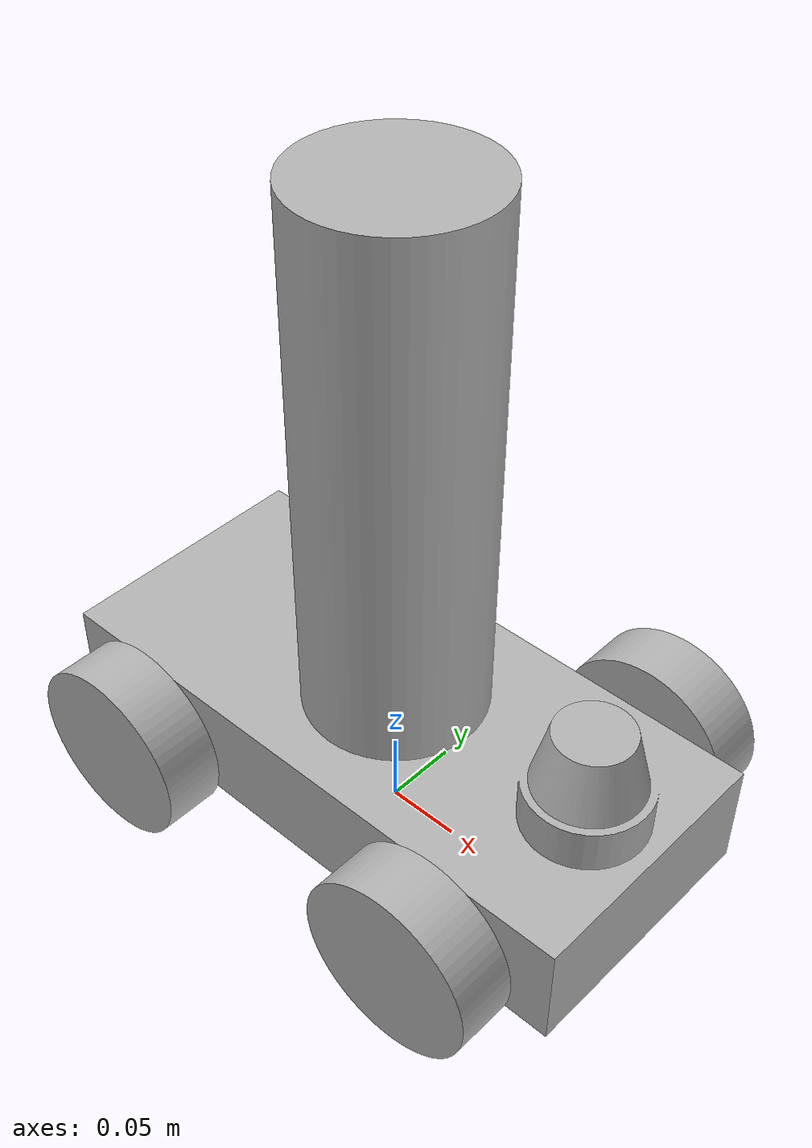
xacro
<?xml version="1.0" ?>
<robot name="uvbot" xmlns:xacro="http://www.ros.org/wiki/xacro">

<xacro:include filename="$(find uvbot_description)/urdf/materials.xacro" />
<xacro:include filename="$(find uvbot_description)/urdf/uvbot.trans" />
<xacro:include filename="$(find uvbot_description)/urdf/uvbot.gazebo" />
<link name="base_link">
  <inertial>
    <origin rpy="0 0 0" xyz="0.004074164770490109 -1.3105282297133997e-17 0.061925957669671544"/>
    <mass value="43.582630252711674"/>
    <inertia ixx="0.13814" ixy="-0.0" ixz="-0.009069" iyy="0.614846" iyz="-0.0" izz="0.706719"/>
  </inertial>
  <visual>
    <origin rpy="0 0 0" xyz="0 0 0"/>
    <geometry>
      <mesh filename="package://uvbot_description/meshes/base_link.stl" scale="0.001 0.001 0.001"/>
    </geometry>
    <material name="silver"/>
  </visual>
  <collision>
    <origin rpy="0 0 0" xyz="0 0 0"/>
    <geometry>
      <mesh filename="package://uvbot_description/meshes/base_link.stl" scale="0.001 0.001 0.001"/>
    </geometry>
  </collision>
</link>

<link name="wheel_rf_1">
  <inertial>
    <origin rpy="0 0 0" xyz="-2.7755575615628914e-17 -0.01999999999999999 6.938893903907228e-18"/>
    <mass value="3.551256335617904"/>
    <inertia ixx="0.00367" ixy="0.0" ixz="0.0" iyy="0.006392" iyz="0.0" izz="0.00367"/>
  </inertial>
  <visual>
    <origin rpy="0 0 0" xyz="-0.12 0.1 -0.0605"/>
    <geometry>
      <mesh filename="package://uvbot_description/meshes/wheel_rf_1.stl" scale="0.001 0.001 0.001"/>
    </geometry>
    <material name="silver"/>
  </visual>
  <collision>
    <origin rpy="0 0 0" xyz="-0.12 0.1 -0.0605"/>
    <geometry>
      <mesh filename="package://uvbot_description/meshes/wheel_rf_1.stl" scale="0.001 0.001 0.001"/>
    </geometry>
  </collision>
</link>

<link name="wheel_rb_1">
  <inertial>
    <origin rpy="0 0 0" xyz="1.3877787807814457e-17 -0.019999999999999976 2.0816681711721685e-17"/>
    <mass value="3.5512563356179028"/>
    <inertia ixx="0.00367" ixy="-0.0" ixz="0.0" iyy="0.006392" iyz="0.0" izz="0.00367"/>
  </inertial>
  <visual>
    <origin rpy="0 0 0" xyz="0.12 0.1 -0.0605"/>
    <geometry>
      <mesh filename="package://uvbot_description/meshes/wheel_rb_1.stl" scale="0.001 0.001 0.001"/>
    </geometry>
    <material name="silver"/>
  </visual>
  <collision>
    <origin rpy="0 0 0" xyz="0.12 0.1 -0.0605"/>
    <geometry>
      <mesh filename="package://uvbot_description/meshes/wheel_rb_1.stl" scale="0.001 0.001 0.001"/>
    </geometry>
  </collision>
</link>

<link name="wheel_lf_1">
  <inertial>
    <origin rpy="0 0 0" xyz="0.0 0.020000000000000018 6.938893903907228e-18"/>
    <mass value="3.551256335617902"/>
    <inertia ixx="0.00367" ixy="0.0" ixz="0.0" iyy="0.006392" iyz="0.0" izz="0.00367"/>
  </inertial>
  <visual>
    <origin rpy="0 0 0" xyz="-0.12 -0.1 -0.0605"/>
    <geometry>
      <mesh filename="package://uvbot_description/meshes/wheel_lf_1.stl" scale="0.001 0.001 0.001"/>
    </geometry>
    <material name="silver"/>
  </visual>
  <collision>
    <origin rpy="0 0 0" xyz="-0.12 -0.1 -0.0605"/>
    <geometry>
      <mesh filename="package://uvbot_description/meshes/wheel_lf_1.stl" scale="0.001 0.001 0.001"/>
    </geometry>
  </collision>
</link>

<link name="wheel_lb_1">
  <inertial>
    <origin rpy="0 0 0" xyz="0.0 0.01999999999999999 6.938893903907228e-18"/>
    <mass value="3.551256335617904"/>
    <inertia ixx="0.00367" ixy="0.0" ixz="-0.0" iyy="0.006392" iyz="-0.0" izz="0.00367"/>
  </inertial>
  <visual>
    <origin rpy="0 0 0" xyz="0.12 -0.1 -0.0605"/>
    <geometry>
      <mesh filename="package://uvbot_description/meshes/wheel_lb_1.stl" scale="0.001 0.001 0.001"/>
    </geometry>
    <material name="silver"/>
  </visual>
  <collision>
    <origin rpy="0 0 0" xyz="0.12 -0.1 -0.0605"/>
    <geometry>
      <mesh filename="package://uvbot_description/meshes/wheel_lb_1.stl" scale="0.001 0.001 0.001"/>
    </geometry>
  </collision>
</link>

<link name="lidar_1">
  <inertial>
    <origin rpy="0 0 0" xyz="0.0 0.0 0.017798165137614674"/>
    <mass value="0.8960345846813674"/>
    <inertia ixx="0.000327" ixy="0.0" ixz="0.0" iyy="0.000327" iyz="0.0" izz="0.000422"/>
  </inertial>
  <visual>
    <origin rpy="0 0 0" xyz="-0.15 -0.0 -0.128"/>
    <geometry>
      <mesh filename="package://uvbot_description/meshes/lidar_1.stl" scale="0.001 0.001 0.001"/>
    </geometry>
    <material name="silver"/>
  </visual>
  <collision>
    <origin rpy="0 0 0" xyz="-0.15 -0.0 -0.128"/>
    <geometry>
      <mesh filename="package://uvbot_description/meshes/lidar_1.stl" scale="0.001 0.001 0.001"/>
    </geometry>
  </collision>
</link>

<link name="uv_light_1">
  <inertial>
    <origin rpy="0 0 0" xyz="0.0 0.0 0.17500000000000007"/>
    <mass value="31.073492936656635"/>
    <inertia ixx="0.345175" ixy="0.0" ixz="0.0" iyy="0.345175" iyz="0.0" izz="0.055932"/>
  </inertial>
  <visual>
    <origin rpy="0 0 0" xyz="-0.0 -0.0 -0.098"/>
    <geometry>
      <mesh filename="package://uvbot_description/meshes/uv_light_1.stl" scale="0.001 0.001 0.001"/>
    </geometry>
    <material name="silver"/>
  </visual>
  <collision>
    <origin rpy="0 0 0" xyz="-0.0 -0.0 -0.098"/>
    <geometry>
      <mesh filename="package://uvbot_description/meshes/uv_light_1.stl" scale="0.001 0.001 0.001"/>
    </geometry>
  </collision>
</link>

<joint name="Rev1" type="continuous">
  <origin rpy="0 0 0" xyz="0.12 -0.1 0.0605"/>
  <parent link="base_link"/>
  <child link="wheel_rf_1"/>
  <axis xyz="0.0 -1.0 0.0"/>
</joint>

<joint name="Rev2" type="continuous">
  <origin rpy="0 0 0" xyz="-0.12 -0.1 0.0605"/>
  <parent link="base_link"/>
  <child link="wheel_rb_1"/>
  <axis xyz="0.0 -1.0 0.0"/>
</joint>

<joint name="Rev3" type="continuous">
  <origin rpy="0 0 0" xyz="0.12 0.1 0.0605"/>
  <parent link="base_link"/>
  <child link="wheel_lf_1"/>
  <axis xyz="0.0 1.0 0.0"/>
</joint>

<joint name="Rev4" type="continuous">
  <origin rpy="0 0 0" xyz="-0.12 0.1 0.0605"/>
  <parent link="base_link"/>
  <child link="wheel_lb_1"/>
  <axis xyz="0.0 1.0 0.0"/>
</joint>

<joint name="Rigid5" type="fixed">
  <origin rpy="0 0 0" xyz="0.15 0.0 0.128"/>
  <parent link="base_link"/>
  <child link="lidar_1"/>
</joint>

<joint name="Rigid6" type="fixed">
  <origin rpy="0 0 0" xyz="0.0 0.0 0.098"/>
  <parent link="base_link"/>
  <child link="uv_light_1"/>
</joint>

</robot>

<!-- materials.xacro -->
<robot name="uvbot" xmlns:xacro="http://www.ros.org/wiki/xacro" >

<material name="silver">
  <color rgba="0.700 0.700 0.700 1.000"/>
</material>

</robot>

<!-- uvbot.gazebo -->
<robot name="uvbot" xmlns:xacro="http://www.ros.org/wiki/xacro" >

<xacro:property name="body_color" value="Gazebo/Silver" />

<gazebo>
  <plugin filename="libgazebo_ros_control.so" name="control"/>
</gazebo>
<gazebo reference="base_link">
  <material>${body_color}</material>
  <mu1>0.2</mu1>
  <mu2>0.2</mu2>
  <selfCollide>true</selfCollide>
  <gravity>true</gravity>
</gazebo>

<gazebo reference="wheel_rf_1">
  <material>${body_color}</material>
  <mu1>0.2</mu1>
  <mu2>0.2</mu2>
  <selfCollide>true</selfCollide>
</gazebo>

<gazebo reference="wheel_rb_1">
  <material>${body_color}</material>
  <mu1>0.2</mu1>
  <mu2>0.2</mu2>
  <selfCollide>true</selfCollide>
</gazebo>

<gazebo reference="wheel_lf_1">
  <material>${body_color}</material>
  <mu1>0.2</mu1>
  <mu2>0.2</mu2>
  <selfCollide>true</selfCollide>
</gazebo>

<gazebo reference="wheel_lb_1">
  <material>${body_color}</material>
  <mu1>0.2</mu1>
  <mu2>0.2</mu2>
  <selfCollide>true</selfCollide>
</gazebo>

<gazebo reference="lidar_1">
  <material>${body_color}</material>
  <mu1>0.2</mu1>
  <mu2>0.2</mu2>
  <selfCollide>true</selfCollide>
</gazebo>

<gazebo reference="uv_light_1">
  <material>${body_color}</material>
  <mu1>0.2</mu1>
  <mu2>0.2</mu2>
  <selfCollide>true</selfCollide>
</gazebo>

</robot>
